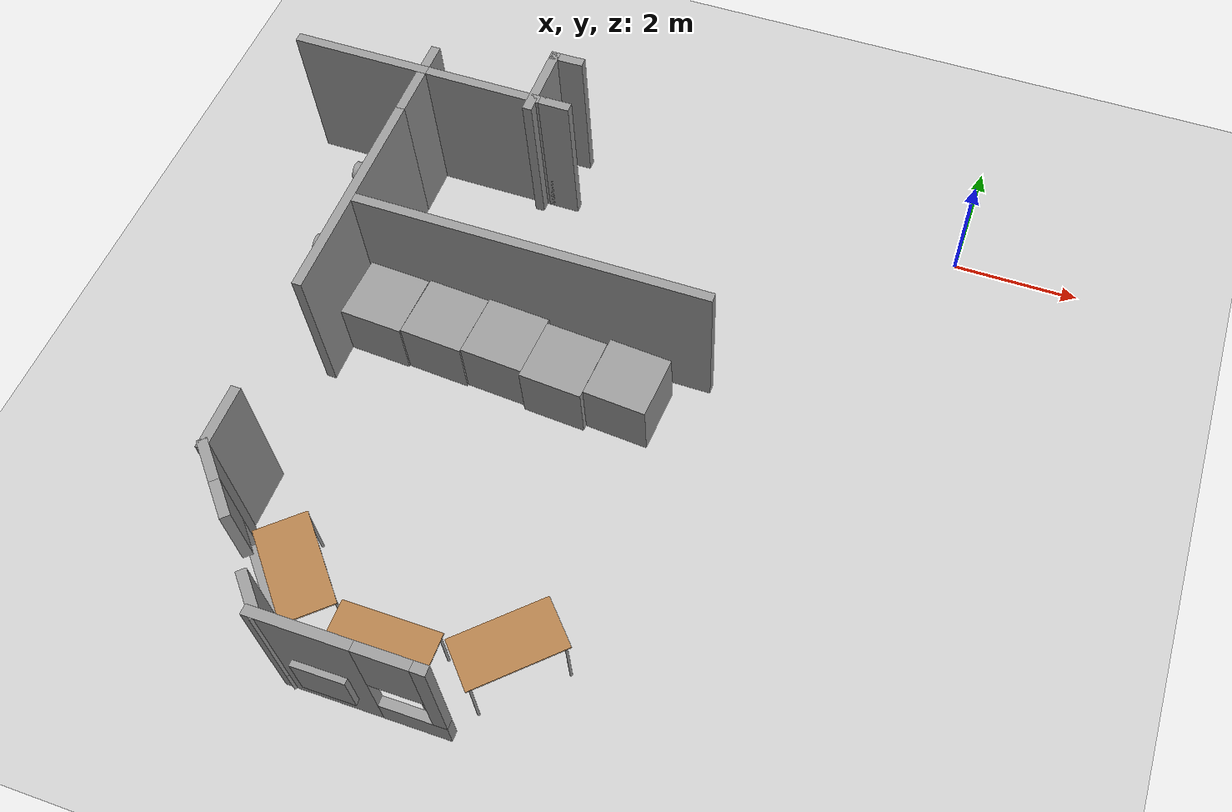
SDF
<sdf version="1.6">
 <world name="default">
  <model name="ground_plane">
   <static>1</static>
   <link name="link">
    <collision name="collision">
     <geometry><plane><normal>0 0 1</normal><size>100 100</size></plane></geometry>
     <surface>
      <contact><collide_bitmask>65535</collide_bitmask></contact>
      <friction><ode><mu>100</mu><mu2>50</mu2></ode></friction>
     </surface>
    </collision>
    <visual name="visual">
     <cast_shadows>0</cast_shadows>
     <geometry><plane><normal>0 0 1</normal><size>100 100</size></plane></geometry>
     <material>
      <script><uri>file://media/materials/scripts/gazebo.material</uri><name>Gazebo/Grey</name></script>
     </material>
    </visual>
   </link>
  </model>
  <model name="spruce1st">
   <pose>-3.08285 0.81707 0 0 -0 0</pose>
   <link name="Wall_114">
    <collision name="Wall_114_Collision">
     <geometry><box><size>0.558425 0.15 2.5</size></box></geometry>
     <pose>0 0 1.25 0 -0 0</pose>
    </collision>
    <visual name="Wall_114_Visual">
     <pose>0 0 1.25 0 -0 0</pose>
     <geometry><box><size>0.558425 0.15 2.5</size></box></geometry>
     <material>
      <script><uri>file://media/materials/scripts/gazebo.material</uri><name>Gazebo/Grey</name></script>
      <ambient>1 1 1 1</ambient>
     </material>
     <meta><layer>0</layer></meta>
    </visual>
    <pose>-3.5929 -0.747612 0 0 -0 0.011322</pose>
   </link>
   <link name="Wall_118">
    <collision name="Wall_118_Collision">
     <geometry><box><size>2.25 0.15 2.5</size></box></geometry>
     <pose>0 0 1.25 0 -0 0</pose>
    </collision>
    <visual name="Wall_118_Visual">
     <pose>0 0 1.25 0 -0 0</pose>
     <geometry><box><size>2.25 0.15 2.5</size></box></geometry>
     <material>
      <script><uri>file://media/materials/scripts/gazebo.material</uri><name>Gazebo/Grey</name></script>
      <ambient>1 1 1 1</ambient>
     </material>
     <meta><layer>0</layer></meta>
    </visual>
    <pose>-6.69747 -1.68429 0 0 -0 3.14159</pose>
   </link>
   <link name="Wall_120">
    <pose>-4.75817 -9.71229 0 0 0 -0.827482</pose>
    <visual name="Wall_120_Visual_0">
     <pose>-1.03991 0 1.25 0 -0 0</pose>
     <geometry><box><size>0.672491 0.15 2.5</size></box></geometry>
     <material>
      <script><uri>file://media/materials/scripts/gazebo.material</uri><name>Gazebo/Grey</name></script>
      <ambient>1 1 1 1</ambient>
     </material>
     <meta><layer>0</layer></meta>
    </visual>
    <collision name="Wall_120_Collision_0">
     <geometry><box><size>0.672491 0.15 2.5</size></box></geometry>
     <pose>-1.03991 0 1.25 0 -0 0</pose>
    </collision>
    <visual name="Wall_120_Visual_1">
     <pose>0.336245 0 0.25 0 -0 0</pose>
     <geometry><box><size>2.07981 0.15 0.5</size></box></geometry>
     <material>
      <script><uri>file://media/materials/scripts/gazebo.material</uri><name>Gazebo/Grey</name></script>
      <ambient>1 1 1 1</ambient>
     </material>
     <meta><layer>0</layer></meta>
    </visual>
    <collision name="Wall_120_Collision_1">
     <geometry><box><size>2.07981 0.15 0.5</size></box></geometry>
     <pose>0.336245 0 0.25 0 -0 0</pose>
    </collision>
    <visual name="Wall_120_Visual_2">
     <pose>1.02545 0 1.5 0 -0 0</pose>
     <geometry><box><size>0.701408 0.15 2</size></box></geometry>
     <material>
      <script><uri>file://media/materials/scripts/gazebo.material</uri><name>Gazebo/Grey</name></script>
      <ambient>1 1 1 1</ambient>
     </material>
     <meta><layer>0</layer></meta>
    </visual>
    <collision name="Wall_120_Collision_2">
     <geometry><box><size>0.701408 0.15 2</size></box></geometry>
     <pose>1.02545 0 1.5 0 -0 0</pose>
    </collision>
    <visual name="Wall_120_Visual_3">
     <pose>-0.414459 0 1.9 0 -0 0</pose>
     <geometry><box><size>0.578405 0.15 1.2</size></box></geometry>
     <material>
      <script><uri>file://media/materials/scripts/gazebo.material</uri><name>Gazebo/Grey</name></script>
      <ambient>1 1 1 1</ambient>
     </material>
     <meta><layer>0</layer></meta>
    </visual>
    <collision name="Wall_120_Collision_3">
     <geometry><box><size>0.578405 0.15 1.2</size></box></geometry>
     <pose>-0.414459 0 1.9 0 -0 0</pose>
    </collision>
   </link>
   <link name="Wall_121">
    <pose>-2.78005 -10.6702 0 0 -0 0</pose>
    <visual name="Wall_121_Visual_0">
     <pose>-0.507131 0 1.25 0 -0 0</pose>
     <geometry><box><size>1.48574 0.15 2.5</size></box></geometry>
     <material>
      <script><uri>file://media/materials/scripts/gazebo.material</uri><name>Gazebo/Grey</name></script>
      <ambient>1 1 1 1</ambient>
     </material>
     <meta><layer>0</layer></meta>
    </visual>
    <collision name="Wall_121_Collision_0">
     <geometry><box><size>1.48574 0.15 2.5</size></box></geometry>
     <pose>-0.507131 0 1.25 0 -0 0</pose>
    </collision>
    <visual name="Wall_121_Visual_1">
     <pose>0.742869 0 0.25 0 -0 0</pose>
     <geometry><box><size>1.01426 0.15 0.5</size></box></geometry>
     <material>
      <script><uri>file://media/materials/scripts/gazebo.material</uri><name>Gazebo/Grey</name></script>
      <ambient>1 1 1 1</ambient>
     </material>
     <meta><layer>0</layer></meta>
    </visual>
    <collision name="Wall_121_Collision_1">
     <geometry><box><size>1.01426 0.15 0.5</size></box></geometry>
     <pose>0.742869 0 0.25 0 -0 0</pose>
    </collision>
    <visual name="Wall_121_Visual_2">
     <pose>1.14287 0 1.5 0 -0 0</pose>
     <geometry><box><size>0.214262 0.15 2</size></box></geometry>
     <material>
      <script><uri>file://media/materials/scripts/gazebo.material</uri><name>Gazebo/Grey</name></script>
      <ambient>1 1 1 1</ambient>
     </material>
     <meta><layer>0</layer></meta>
    </visual>
    <collision name="Wall_121_Collision_2">
     <geometry><box><size>0.214262 0.15 2</size></box></geometry>
     <pose>1.14287 0 1.5 0 -0 0</pose>
    </collision>
    <visual name="Wall_121_Visual_3">
     <pose>0.635738 0 1.9 0 -0 0</pose>
     <geometry><box><size>0.8 0.15 1.2</size></box></geometry>
     <material>
      <script><uri>file://media/materials/scripts/gazebo.material</uri><name>Gazebo/Grey</name></script>
      <ambient>1 1 1 1</ambient>
     </material>
     <meta><layer>0</layer></meta>
    </visual>
    <collision name="Wall_121_Collision_3">
     <geometry><box><size>0.8 0.15 1.2</size></box></geometry>
     <pose>0.635738 0 1.9 0 -0 0</pose>
    </collision>
   </link>
   <link name="Wall_129">
    <collision name="Wall_129_Collision">
     <geometry><box><size>2.13359 0.15 2.5</size></box></geometry>
     <pose>0 0 1.25 0 -0 0</pose>
    </collision>
    <visual name="Wall_129_Visual">
     <pose>0 0 1.25 0 -0 0</pose>
     <geometry><box><size>2.13359 0.15 2.5</size></box></geometry>
     <material>
      <script><uri>file://media/materials/scripts/gazebo.material</uri><name>Gazebo/Grey</name></script>
      <ambient>1 1 1 1</ambient>
     </material>
     <meta><layer>0</layer></meta>
    </visual>
    <pose>-4.65567 -1.68429 0 0 -0 0</pose>
   </link>
   <link name="Wall_130">
    <collision name="Wall_130_Collision">
     <geometry><box><size>0.5 0.15 2.5</size></box></geometry>
     <pose>0 0 1.25 0 -0 0</pose>
    </collision>
    <visual name="Wall_130_Visual">
     <pose>0 0 1.25 0 -0 0</pose>
     <geometry><box><size>0.5 0.15 2.5</size></box></geometry>
     <material>
      <script><uri>file://media/materials/scripts/gazebo.material</uri><name>Gazebo/Grey</name></script>
      <ambient>0 0 0 0</ambient>
     </material>
     <meta><layer>0</layer></meta>
    </visual>
    <pose>-3.43067 -1.68429 0 0 -0 0</pose>
   </link>
   <link name="Wall_131">
    <collision name="Wall_131_Collision">
     <geometry><box><size>1.25 0.15 2.5</size></box></geometry>
     <pose>0 0 1.25 0 -0 0</pose>
    </collision>
    <visual name="Wall_131_Visual">
     <pose>0 0 1.25 0 -0 0</pose>
     <geometry><box><size>1.25 0.15 2.5</size></box></geometry>
     <material>
      <script><uri>file://media/materials/scripts/gazebo.material</uri><name>Gazebo/Grey</name></script>
      <ambient>1 1 1 1</ambient>
     </material>
     <meta><layer>0</layer></meta>
    </visual>
    <pose>-3.7971 -1.29992 0 0 0 -1.5708</pose>
   </link>
   <link name="Wall_34">
    <collision name="Wall_34_Collision">
     <geometry><box><size>1.5 0.15 2.5</size></box></geometry>
     <pose>0 0 1.25 0 -0 0</pose>
    </collision>
    <visual name="Wall_34_Visual">
     <pose>0 0 1.25 0 -0 0</pose>
     <geometry><box><size>1.5 0.15 2.5</size></box></geometry>
     <material>
      <script><uri>file://media/materials/scripts/gazebo.material</uri><name>Gazebo/Grey</name></script>
      <ambient>1 1 1 1</ambient>
     </material>
     <meta><layer>0</layer></meta>
    </visual>
    <pose>-5.64574 -1.939 0 0 0 -1.5708</pose>
   </link>
   <link name="Wall_43">
    <collision name="Wall_43_Collision">
     <geometry><box><size>3.5 0.15 2.5</size></box></geometry>
     <pose>0 0 1.25 0 -0 0</pose>
    </collision>
    <visual name="Wall_43_Visual">
     <pose>0 0 1.25 0 -0 0</pose>
     <geometry><box><size>3.5 0.15 2.5</size></box></geometry>
     <material>
      <script><uri>file://media/materials/scripts/gazebo.material</uri><name>Gazebo/Grey</name></script>
      <ambient>1 1 1 1</ambient>
     </material>
     <meta><layer>0</layer></meta>
    </visual>
    <pose>-5.64574 -4.289 0 0 0 -1.5708</pose>
   </link>
   <link name="Wall_45">
    <collision name="Wall_45_Collision">
     <geometry><box><size>1 0.15 2.5</size></box></geometry>
     <pose>0 0 1.25 0 -0 0</pose>
    </collision>
    <visual name="Wall_45_Visual">
     <pose>0 0 1.25 0 -0 0</pose>
     <geometry><box><size>1 0.15 2.5</size></box></geometry>
     <material>
      <script><uri>file://media/materials/scripts/gazebo.material</uri><name>Gazebo/Grey</name></script>
      <ambient>1 1 1 1</ambient>
     </material>
     <meta><layer>0</layer></meta>
    </visual>
    <pose>-5.6387 -8.32935 0 0 -0 1.5708</pose>
   </link>
   <link name="Wall_47">
    <collision name="Wall_47_Collision">
     <geometry><box><size>5.75 0.15 2.5</size></box></geometry>
     <pose>0 0 1.25 0 -0 0</pose>
    </collision>
    <visual name="Wall_47_Visual">
     <pose>0 0 1.25 0 -0 0</pose>
     <geometry><box><size>5.75 0.15 2.5</size></box></geometry>
     <material>
      <script><uri>file://media/materials/scripts/gazebo.material</uri><name>Gazebo/Grey</name></script>
      <ambient>1 1 1 1</ambient>
     </material>
     <meta><layer>0</layer></meta>
    </visual>
    <pose>-2.8387 -4.3461 0 0 -0 0</pose>
   </link>
   <link name="Window_18">
    <collision name="Window_18_Collision">
     <geometry><box><size>0.8 0.17 0.8</size></box></geometry>
     <pose>0 0 0.4 0 -0 0</pose>
    </collision>
    <visual name="Window_18_Visual">
     <pose>0 0 0.4 0 -0 0</pose>
     <geometry><box><size>0.8 0.17 0.8</size></box></geometry>
     <material>
      <script><uri>file://media/materials/scripts/gazebo.material</uri><name>Gazebo/Grey</name></script>
     </material>
    </visual>
    <pose>-3.21325 -10.7513 0.5 0 -0 0</pose>
   </link>
   <static>1</static>
  </model>
  <model name="table_0">
   <static>1</static>
   <link name="link">
    <collision name="surface">
     <pose>0 0 1 0 -0 0</pose>
     <geometry><box><size>1.5 0.8 0.03</size></box></geometry>
     <surface><friction><ode><mu>0.6</mu><mu2>0.6</mu2></ode></friction></surface>
    </collision>
    <visual name="visual1">
     <pose>0 0 1 0 -0 0</pose>
     <geometry><box><size>1.5 0.8 0.03</size></box></geometry>
     <material>
      <script><uri>file://media/materials/scripts/gazebo.material</uri><name>Gazebo/Wood</name></script>
     </material>
    </visual>
    <collision name="front_left_leg">
     <pose>0.68 0.38 0.5 0 -0 0</pose>
     <geometry><cylinder><radius>0.02</radius><length>1</length></cylinder></geometry>
    </collision>
    <visual name="front_left_leg">
     <pose>0.68 0.38 0.5 0 -0 0</pose>
     <geometry><cylinder><radius>0.02</radius><length>1</length></cylinder></geometry>
     <material>
      <script><uri>file://media/materials/scripts/gazebo.material</uri><name>Gazebo/Grey</name></script>
     </material>
    </visual>
    <collision name="front_right_leg">
     <pose>0.68 -0.38 0.5 0 -0 0</pose>
     <geometry><cylinder><radius>0.02</radius><length>1</length></cylinder></geometry>
    </collision>
    <visual name="front_right_leg">
     <pose>0.68 -0.38 0.5 0 -0 0</pose>
     <geometry><cylinder><radius>0.02</radius><length>1</length></cylinder></geometry>
     <material>
      <script><uri>file://media/materials/scripts/gazebo.material</uri><name>Gazebo/Grey</name></script>
     </material>
    </visual>
    <collision name="back_right_leg">
     <pose>-0.68 -0.38 0.5 0 -0 0</pose>
     <geometry><cylinder><radius>0.02</radius><length>1</length></cylinder></geometry>
    </collision>
    <visual name="back_right_leg">
     <pose>-0.68 -0.38 0.5 0 -0 0</pose>
     <geometry><cylinder><radius>0.02</radius><length>1</length></cylinder></geometry>
     <material>
      <script><uri>file://media/materials/scripts/gazebo.material</uri><name>Gazebo/Grey</name></script>
     </material>
    </visual>
    <collision name="back_left_leg">
     <pose>-0.68 0.38 0.5 0 -0 0</pose>
     <geometry><cylinder><radius>0.02</radius><length>1</length></cylinder></geometry>
    </collision>
    <visual name="back_left_leg">
     <pose>-0.68 0.38 0.5 0 -0 0</pose>
     <geometry><cylinder><radius>0.02</radius><length>1</length></cylinder></geometry>
     <material>
      <script><uri>file://media/materials/scripts/gazebo.material</uri><name>Gazebo/Grey</name></script>
     </material>
    </visual>
   </link>
   <pose>-5.80464 -9.26924 0 0 -0 0</pose>
  </model>
  <model name="table_1">
   <static>1</static>
   <link name="link">
    <collision name="surface">
     <pose>0 0 1 0 -0 0</pose>
     <geometry><box><size>1.5 0.8 0.03</size></box></geometry>
     <surface><friction><ode><mu>0.6</mu><mu2>0.6</mu2></ode></friction></surface>
    </collision>
    <visual name="visual1">
     <pose>0 0 1 0 -0 0</pose>
     <geometry><box><size>1.5 0.8 0.03</size></box></geometry>
     <material>
      <script><uri>file://media/materials/scripts/gazebo.material</uri><name>Gazebo/Wood</name></script>
     </material>
    </visual>
    <collision name="front_left_leg">
     <pose>0.68 0.38 0.5 0 -0 0</pose>
     <geometry><cylinder><radius>0.02</radius><length>1</length></cylinder></geometry>
    </collision>
    <visual name="front_left_leg">
     <pose>0.68 0.38 0.5 0 -0 0</pose>
     <geometry><cylinder><radius>0.02</radius><length>1</length></cylinder></geometry>
     <material>
      <script><uri>file://media/materials/scripts/gazebo.material</uri><name>Gazebo/Grey</name></script>
     </material>
    </visual>
    <collision name="front_right_leg">
     <pose>0.68 -0.38 0.5 0 -0 0</pose>
     <geometry><cylinder><radius>0.02</radius><length>1</length></cylinder></geometry>
    </collision>
    <visual name="front_right_leg">
     <pose>0.68 -0.38 0.5 0 -0 0</pose>
     <geometry><cylinder><radius>0.02</radius><length>1</length></cylinder></geometry>
     <material>
      <script><uri>file://media/materials/scripts/gazebo.material</uri><name>Gazebo/Grey</name></script>
     </material>
    </visual>
    <collision name="back_right_leg">
     <pose>-0.68 -0.38 0.5 0 -0 0</pose>
     <geometry><cylinder><radius>0.02</radius><length>1</length></cylinder></geometry>
    </collision>
    <visual name="back_right_leg">
     <pose>-0.68 -0.38 0.5 0 -0 0</pose>
     <geometry><cylinder><radius>0.02</radius><length>1</length></cylinder></geometry>
     <material>
      <script><uri>file://media/materials/scripts/gazebo.material</uri><name>Gazebo/Grey</name></script>
     </material>
    </visual>
    <collision name="back_left_leg">
     <pose>-0.68 0.38 0.5 0 -0 0</pose>
     <geometry><cylinder><radius>0.02</radius><length>1</length></cylinder></geometry>
    </collision>
    <visual name="back_left_leg">
     <pose>-0.68 0.38 0.5 0 -0 0</pose>
     <geometry><cylinder><radius>0.02</radius><length>1</length></cylinder></geometry>
     <material>
      <script><uri>file://media/materials/scripts/gazebo.material</uri><name>Gazebo/Grey</name></script>
     </material>
    </visual>
   </link>
   <pose>-7.3924 -8.64565 0 0 0 -0.841721</pose>
  </model>
  <model name="table_2">
   <static>1</static>
   <link name="link">
    <collision name="surface">
     <pose>0 0 1 0 -0 0</pose>
     <geometry><box><size>1.5 0.8 0.03</size></box></geometry>
     <surface><friction><ode><mu>0.6</mu><mu2>0.6</mu2></ode></friction></surface>
    </collision>
    <visual name="visual1">
     <pose>0 0 1 0 -0 0</pose>
     <geometry><box><size>1.5 0.8 0.03</size></box></geometry>
     <material>
      <script><uri>file://media/materials/scripts/gazebo.material</uri><name>Gazebo/Wood</name></script>
     </material>
    </visual>
    <collision name="front_left_leg">
     <pose>0.68 0.38 0.5 0 -0 0</pose>
     <geometry><cylinder><radius>0.02</radius><length>1</length></cylinder></geometry>
    </collision>
    <visual name="front_left_leg">
     <pose>0.68 0.38 0.5 0 -0 0</pose>
     <geometry><cylinder><radius>0.02</radius><length>1</length></cylinder></geometry>
     <material>
      <script><uri>file://media/materials/scripts/gazebo.material</uri><name>Gazebo/Grey</name></script>
     </material>
    </visual>
    <collision name="front_right_leg">
     <pose>0.68 -0.38 0.5 0 -0 0</pose>
     <geometry><cylinder><radius>0.02</radius><length>1</length></cylinder></geometry>
    </collision>
    <visual name="front_right_leg">
     <pose>0.68 -0.38 0.5 0 -0 0</pose>
     <geometry><cylinder><radius>0.02</radius><length>1</length></cylinder></geometry>
     <material>
      <script><uri>file://media/materials/scripts/gazebo.material</uri><name>Gazebo/Grey</name></script>
     </material>
    </visual>
    <collision name="back_right_leg">
     <pose>-0.68 -0.38 0.5 0 -0 0</pose>
     <geometry><cylinder><radius>0.02</radius><length>1</length></cylinder></geometry>
    </collision>
    <visual name="back_right_leg">
     <pose>-0.68 -0.38 0.5 0 -0 0</pose>
     <geometry><cylinder><radius>0.02</radius><length>1</length></cylinder></geometry>
     <material>
      <script><uri>file://media/materials/scripts/gazebo.material</uri><name>Gazebo/Grey</name></script>
     </material>
    </visual>
    <collision name="back_left_leg">
     <pose>-0.68 0.38 0.5 0 -0 0</pose>
     <geometry><cylinder><radius>0.02</radius><length>1</length></cylinder></geometry>
    </collision>
    <visual name="back_left_leg">
     <pose>-0.68 0.38 0.5 0 -0 0</pose>
     <geometry><cylinder><radius>0.02</radius><length>1</length></cylinder></geometry>
     <material>
      <script><uri>file://media/materials/scripts/gazebo.material</uri><name>Gazebo/Grey</name></script>
     </material>
    </visual>
   </link>
   <pose>-4.1919 -8.72411 0 0 -0 0.755331</pose>
  </model>
  <model name="bookshelf_clone_2">
   <static>1</static>
   <link name="link">
    <inertial><mass>1</mass></inertial>
    <collision name="back">
     <pose>0 0.005 0.6 0 -0 0</pose>
     <geometry><box><size>0.9 0.01 1.2</size></box></geometry>
    </collision>
    <visual name="visual1">
     <pose>0 0.005 0.6 0 -0 0</pose>
     <geometry><box><size>0.9 0.01 1.2</size></box></geometry>
     <material>
      <script><uri>file://media/materials/scripts/gazebo.material</uri><name>Gazebo/Wood</name></script>
     </material>
    </visual>
    <collision name="left_side">
     <pose>0.45 -0.195 0.6 0 -0 0</pose>
     <geometry><box><size>0.02 0.4 1.2</size></box></geometry>
    </collision>
    <visual name="visual2">
     <pose>0.45 -0.195 0.6 0 -0 0</pose>
     <geometry><box><size>0.02 0.4 1.2</size></box></geometry>
     <material>
      <script><uri>file://media/materials/scripts/gazebo.material</uri><name>Gazebo/Wood</name></script>
     </material>
    </visual>
    <collision name="right_side">
     <pose>-0.45 -0.195 0.6 0 -0 0</pose>
     <geometry><box><size>0.02 0.4 1.2</size></box></geometry>
    </collision>
    <visual name="visual3">
     <pose>-0.45 -0.195 0.6 0 -0 0</pose>
     <geometry><box><size>0.02 0.4 1.2</size></box></geometry>
     <material>
      <script><uri>file://media/materials/scripts/gazebo.material</uri><name>Gazebo/Wood</name></script>
     </material>
    </visual>
    <collision name="bottom">
     <pose>0 -0.195 0.03 0 -0 0</pose>
     <geometry><box><size>0.88 0.4 0.06</size></box></geometry>
    </collision>
    <visual name="visual4">
     <pose>0 -0.195 0.03 0 -0 0</pose>
     <geometry><box><size>0.88 0.4 0.06</size></box></geometry>
     <material>
      <script><uri>file://media/materials/scripts/gazebo.material</uri><name>Gazebo/Wood</name></script>
     </material>
    </visual>
    <collision name="top">
     <pose>0 -0.195 1.19 0 -0 0</pose>
     <geometry><box><size>0.88 0.4 0.02</size></box></geometry>
    </collision>
    <visual name="visual5">
     <pose>0 -0.195 1.19 0 -0 0</pose>
     <geometry><box><size>0.88 0.4 0.02</size></box></geometry>
     <material>
      <script><uri>file://media/materials/scripts/gazebo.material</uri><name>Gazebo/Wood</name></script>
     </material>
    </visual>
    <collision name="low_shelf">
     <pose>0 -0.195 0.43 0 -0 0</pose>
     <geometry><box><size>0.88 0.4 0.02</size></box></geometry>
    </collision>
    <visual name="visual6">
     <pose>0 -0.195 0.43 0 -0 0</pose>
     <geometry><box><size>0.88 0.4 0.02</size></box></geometry>
     <material>
      <script><uri>file://media/materials/scripts/gazebo.material</uri><name>Gazebo/Wood</name></script>
     </material>
    </visual>
    <collision name="high_shelf">
     <pose>0 -0.195 0.8 0 -0 0</pose>
     <geometry><box><size>0.88 0.4 0.02</size></box></geometry>
    </collision>
    <visual name="visual7">
     <pose>0 -0.195 0.8 0 -0 0</pose>
     <geometry><box><size>0.88 0.4 0.02</size></box></geometry>
     <material>
      <script><uri>file://media/materials/scripts/gazebo.material</uri><name>Gazebo/Wood</name></script>
     </material>
    </visual>
   </link>
   <pose>-9.46219 -0.797828 0 0 -0 3.09572</pose>
  </model>
  <model name="couch2.0_5">
   <link name="link_0">
    <pose>0 0.042624 -0.025032 0 -0 0</pose>
    <inertial>
     <mass>0.629351</mass>
     <inertia>
      <ixx>0.0582683</ixx>
      <ixy>0</ixy>
      <ixz>0</ixz>
      <iyy>0.192922</iyy>
      <iyz>0</iyz>
      <izz>0.239546</izz>
     </inertia>
    </inertial>
    <visual name="visual">
     <geometry><box><size>1.88878 1 0.33319</size></box></geometry>
     <material>
      <lighting>1</lighting>
      <script><uri>file://media/materials/scripts/gazebo.material</uri><name>Gazebo/Grey</name></script>
      <shader type="pixel"><normal_map>__default__</normal_map></shader>
      <ambient>0.3 0.3 0.3 1</ambient>
      <diffuse>0.7 0.7 0.7 1</diffuse>
      <specular>0.01 0.01 0.01 1</specular>
      <emissive>0 0 0 1</emissive>
     </material>
    </visual>
    <collision name="collision">
     <geometry><box><size>1.88878 1 0.33319</size></box></geometry>
     <surface>
      <friction>
       <ode><mu>1</mu><mu2>1</mu2><fdir1>0 0 0</fdir1><slip1>0</slip1><slip2>0</slip2></ode>
       <torsional>
        <coefficient>1</coefficient>
        <patch_radius>0</patch_radius>
        <surface_radius>0</surface_radius>
        <use_patch_radius>1</use_patch_radius>
        <ode><slip>0</slip></ode>
       </torsional>
      </friction>
      <bounce><restitution_coefficient>0</restitution_coefficient><threshold>1e+06</threshold></bounce>
      <contact>
       <collide_without_contact>0</collide_without_contact>
       <collide_without_contact_bitmask>1</collide_without_contact_bitmask>
       <collide_bitmask>1</collide_bitmask>
       <ode>
        <soft_cfm>0</soft_cfm>
        <soft_erp>0.2</soft_erp>
        <kp>1e+13</kp>
        <kd>1</kd>
        <max_vel>0.01</max_vel>
        <min_depth>0</min_depth>
       </ode>
       <bullet>
        <split_impulse>1</split_impulse>
        <split_impulse_penetration_threshold>-0.01</split_impulse_penetration_threshold>
        <soft_cfm>0</soft_cfm>
        <soft_erp>0.2</soft_erp>
        <kp>1e+13</kp>
        <kd>1</kd>
       </bullet>
      </contact>
     </surface>
    </collision>
   </link>
   <link name="link_0_clone">
    <pose>0 -0.383981 0.182545 0 -0 0</pose>
    <inertial>
     <mass>0.207466</mass>
     <inertia>
      <ixx>0.0100546</ixx>
      <ixy>0</ixy>
      <ixz>0</ixz>
      <iyy>0.0713599</iyy>
      <iyz>0</iyz>
      <izz>0.0620503</izz>
     </inertia>
    </inertial>
    <visual name="visual">
     <geometry><box><size>1.88878 0.146789 0.748345</size></box></geometry>
     <material>
      <lighting>1</lighting>
      <script><uri>file://media/materials/scripts/gazebo.material</uri><name>Gazebo/Grey</name></script>
      <shader type="pixel"><normal_map>__default__</normal_map></shader>
      <ambient>0.3 0.3 0.3 1</ambient>
      <diffuse>0.7 0.7 0.7 1</diffuse>
      <specular>0.01 0.01 0.01 1</specular>
      <emissive>0 0 0 1</emissive>
     </material>
    </visual>
    <collision name="collision">
     <geometry><box><size>1.88878 0.146789 0.748345</size></box></geometry>
     <surface>
      <friction>
       <ode><mu>1</mu><mu2>1</mu2><fdir1>0 0 0</fdir1><slip1>0</slip1><slip2>0</slip2></ode>
       <torsional>
        <coefficient>1</coefficient>
        <patch_radius>0</patch_radius>
        <surface_radius>0</surface_radius>
        <use_patch_radius>1</use_patch_radius>
        <ode><slip>0</slip></ode>
       </torsional>
      </friction>
      <bounce><restitution_coefficient>0</restitution_coefficient><threshold>1e+06</threshold></bounce>
      <contact>
       <collide_without_contact>0</collide_without_contact>
       <collide_without_contact_bitmask>1</collide_without_contact_bitmask>
       <collide_bitmask>1</collide_bitmask>
       <ode>
        <soft_cfm>0</soft_cfm>
        <soft_erp>0.2</soft_erp>
        <kp>1e+13</kp>
        <kd>1</kd>
        <max_vel>0.01</max_vel>
        <min_depth>0</min_depth>
       </ode>
       <bullet>
        <split_impulse>1</split_impulse>
        <split_impulse_penetration_threshold>-0.01</split_impulse_penetration_threshold>
        <soft_cfm>0</soft_cfm>
        <soft_erp>0.2</soft_erp>
        <kp>1e+13</kp>
        <kd>1</kd>
       </bullet>
      </contact>
     </surface>
    </collision>
   </link>
   <link name="link_1">
    <pose>-0.909335 -0.422322 -0.235214 0 -0 0</pose>
    <inertial>
     <mass>0.000500743</mass>
     <inertia>
      <ixx>5.85623e-07</ixx>
      <ixy>0</ixy>
      <ixz>0</ixz>
      <iyy>5.85623e-07</iyy>
      <iyz>0</iyz>
      <izz>3.07643e-07</izz>
     </inertia>
    </inertial>
    <visual name="visual">
     <geometry><cylinder><radius>0.0350535</radius><length>0.101724</length></cylinder></geometry>
     <material>
      <lighting>1</lighting>
      <script><uri>file://media/materials/scripts/gazebo.material</uri><name>Gazebo/Grey</name></script>
      <shader type="pixel"/>
      <ambient>0.3 0.3 0.3 1</ambient>
      <diffuse>0.7 0.7 0.7 1</diffuse>
      <specular>0.01 0.01 0.01 1</specular>
      <emissive>0 0 0 1</emissive>
     </material>
    </visual>
    <collision name="collision">
     <geometry><cylinder><radius>0.035053</radius><length>0.101724</length></cylinder></geometry>
     <surface>
      <friction>
       <ode><mu>1</mu><mu2>1</mu2><fdir1>0 0 0</fdir1><slip1>0</slip1><slip2>0</slip2></ode>
       <torsional>
        <coefficient>1</coefficient>
        <patch_radius>0</patch_radius>
        <surface_radius>0</surface_radius>
        <use_patch_radius>1</use_patch_radius>
        <ode><slip>0</slip></ode>
       </torsional>
      </friction>
      <bounce><restitution_coefficient>0</restitution_coefficient><threshold>1e+06</threshold></bounce>
      <contact>
       <collide_without_contact>0</collide_without_contact>
       <collide_without_contact_bitmask>1</collide_without_contact_bitmask>
       <collide_bitmask>1</collide_bitmask>
       <ode>
        <soft_cfm>0</soft_cfm>
        <soft_erp>0.2</soft_erp>
        <kp>1e+13</kp>
        <kd>1</kd>
        <max_vel>0.01</max_vel>
        <min_depth>0</min_depth>
       </ode>
       <bullet>
        <split_impulse>1</split_impulse>
        <split_impulse_penetration_threshold>-0.01</split_impulse_penetration_threshold>
        <soft_cfm>0</soft_cfm>
        <soft_erp>0.2</soft_erp>
        <kp>1e+13</kp>
        <kd>1</kd>
       </bullet>
      </contact>
     </surface>
    </collision>
   </link>
   <link name="link_1_clone">
    <pose>-0.909335 0.507571 -0.235214 0 -0 0</pose>
    <inertial>
     <mass>0.000500743</mass>
     <inertia>
      <ixx>5.85623e-07</ixx>
      <ixy>0</ixy>
      <ixz>0</ixz>
      <iyy>5.85623e-07</iyy>
      <iyz>0</iyz>
      <izz>3.07643e-07</izz>
     </inertia>
    </inertial>
    <visual name="visual">
     <geometry><cylinder><radius>0.0350535</radius><length>0.101724</length></cylinder></geometry>
     <material>
      <lighting>1</lighting>
      <script><uri>file://media/materials/scripts/gazebo.material</uri><name>Gazebo/Grey</name></script>
      <shader type="pixel"/>
      <ambient>0.3 0.3 0.3 1</ambient>
      <diffuse>0.7 0.7 0.7 1</diffuse>
      <specular>0.01 0.01 0.01 1</specular>
      <emissive>0 0 0 1</emissive>
     </material>
    </visual>
    <collision name="collision">
     <geometry><cylinder><radius>0.035053</radius><length>0.101724</length></cylinder></geometry>
     <surface>
      <friction>
       <ode><mu>1</mu><mu2>1</mu2><fdir1>0 0 0</fdir1><slip1>0</slip1><slip2>0</slip2></ode>
       <torsional>
        <coefficient>1</coefficient>
        <patch_radius>0</patch_radius>
        <surface_radius>0</surface_radius>
        <use_patch_radius>1</use_patch_radius>
        <ode><slip>0</slip></ode>
       </torsional>
      </friction>
      <bounce><restitution_coefficient>0</restitution_coefficient><threshold>1e+06</threshold></bounce>
      <contact>
       <collide_without_contact>0</collide_without_contact>
       <collide_without_contact_bitmask>1</collide_without_contact_bitmask>
       <collide_bitmask>1</collide_bitmask>
       <ode>
        <soft_cfm>0</soft_cfm>
        <soft_erp>0.2</soft_erp>
        <kp>1e+13</kp>
        <kd>1</kd>
        <max_vel>0.01</max_vel>
        <min_depth>0</min_depth>
       </ode>
       <bullet>
        <split_impulse>1</split_impulse>
        <split_impulse_penetration_threshold>-0.01</split_impulse_penetration_threshold>
        <soft_cfm>0</soft_cfm>
        <soft_erp>0.2</soft_erp>
        <kp>1e+13</kp>
        <kd>1</kd>
       </bullet>
      </contact>
     </surface>
    </collision>
   </link>
   <link name="link_1_clone_0">
    <pose>0.909335 -0.422322 -0.235214 0 -0 0</pose>
    <inertial>
     <mass>0.000500743</mass>
     <inertia>
      <ixx>5.85623e-07</ixx>
      <ixy>0</ixy>
      <ixz>0</ixz>
      <iyy>5.85623e-07</iyy>
      <iyz>0</iyz>
      <izz>3.07643e-07</izz>
     </inertia>
    </inertial>
    <visual name="visual">
     <geometry><cylinder><radius>0.0350535</radius><length>0.101724</length></cylinder></geometry>
     <material>
      <lighting>1</lighting>
      <script><uri>file://media/materials/scripts/gazebo.material</uri><name>Gazebo/Grey</name></script>
      <shader type="pixel"/>
      <ambient>0.3 0.3 0.3 1</ambient>
      <diffuse>0.7 0.7 0.7 1</diffuse>
      <specular>0.01 0.01 0.01 1</specular>
      <emissive>0 0 0 1</emissive>
     </material>
    </visual>
    <collision name="collision">
     <geometry><cylinder><radius>0.035053</radius><length>0.101724</length></cylinder></geometry>
     <surface>
      <friction>
       <ode><mu>1</mu><mu2>1</mu2><fdir1>0 0 0</fdir1><slip1>0</slip1><slip2>0</slip2></ode>
       <torsional>
        <coefficient>1</coefficient>
        <patch_radius>0</patch_radius>
        <surface_radius>0</surface_radius>
        <use_patch_radius>1</use_patch_radius>
        <ode><slip>0</slip></ode>
       </torsional>
      </friction>
      <bounce><restitution_coefficient>0</restitution_coefficient><threshold>1e+06</threshold></bounce>
      <contact>
       <collide_without_contact>0</collide_without_contact>
       <collide_without_contact_bitmask>1</collide_without_contact_bitmask>
       <collide_bitmask>1</collide_bitmask>
       <ode>
        <soft_cfm>0</soft_cfm>
        <soft_erp>0.2</soft_erp>
        <kp>1e+13</kp>
        <kd>1</kd>
        <max_vel>0.01</max_vel>
        <min_depth>0</min_depth>
       </ode>
       <bullet>
        <split_impulse>1</split_impulse>
        <split_impulse_penetration_threshold>-0.01</split_impulse_penetration_threshold>
        <soft_cfm>0</soft_cfm>
        <soft_erp>0.2</soft_erp>
        <kp>1e+13</kp>
        <kd>1</kd>
       </bullet>
      </contact>
     </surface>
    </collision>
   </link>
   <link name="link_1_clone_1">
    <pose>0.909335 0.507571 -0.235214 0 -0 0</pose>
    <inertial>
     <mass>0.000500743</mass>
     <inertia>
      <ixx>5.85623e-07</ixx>
      <ixy>0</ixy>
      <ixz>0</ixz>
      <iyy>5.85623e-07</iyy>
      <iyz>0</iyz>
      <izz>3.07643e-07</izz>
     </inertia>
    </inertial>
    <visual name="visual">
     <geometry><cylinder><radius>0.0350535</radius><length>0.101724</length></cylinder></geometry>
     <material>
      <lighting>1</lighting>
      <script><uri>file://media/materials/scripts/gazebo.material</uri><name>Gazebo/Grey</name></script>
      <shader type="pixel"/>
      <ambient>0.3 0.3 0.3 1</ambient>
      <diffuse>0.7 0.7 0.7 1</diffuse>
      <specular>0.01 0.01 0.01 1</specular>
      <emissive>0 0 0 1</emissive>
     </material>
    </visual>
    <collision name="collision">
     <geometry><cylinder><radius>0.035053</radius><length>0.101724</length></cylinder></geometry>
     <surface>
      <friction>
       <ode><mu>1</mu><mu2>1</mu2><fdir1>0 0 0</fdir1><slip1>0</slip1><slip2>0</slip2></ode>
       <torsional>
        <coefficient>1</coefficient>
        <patch_radius>0</patch_radius>
        <surface_radius>0</surface_radius>
        <use_patch_radius>1</use_patch_radius>
        <ode><slip>0</slip></ode>
       </torsional>
      </friction>
      <bounce><restitution_coefficient>0</restitution_coefficient><threshold>1e+06</threshold></bounce>
      <contact>
       <collide_without_contact>0</collide_without_contact>
       <collide_without_contact_bitmask>1</collide_without_contact_bitmask>
       <collide_bitmask>1</collide_bitmask>
       <ode>
        <soft_cfm>0</soft_cfm>
        <soft_erp>0.2</soft_erp>
        <kp>1e+13</kp>
        <kd>1</kd>
        <max_vel>0.01</max_vel>
        <min_depth>0</min_depth>
       </ode>
       <bullet>
        <split_impulse>1</split_impulse>
        <split_impulse_penetration_threshold>-0.01</split_impulse_penetration_threshold>
        <soft_cfm>0</soft_cfm>
        <soft_erp>0.2</soft_erp>
        <kp>1e+13</kp>
        <kd>1</kd>
       </bullet>
      </contact>
     </surface>
    </collision>
   </link>
   <link name="link_3">
    <pose>-0.787536 0.042624 0.075794 0 -0 0</pose>
    <inertial>
     <mass>0.167781</mass>
     <inertia>
      <ixx>0.0179813</ixx>
      <ixy>0</ixy>
      <ixz>0</ixz>
      <iyy>0.0053755</iyy>
      <iyz>0</iyz>
      <izz>0.0153577</izz>
     </inertia>
    </inertial>
    <visual name="visual">
     <geometry><box><size>0.313705 1 0.534841</size></box></geometry>
     <material>
      <lighting>1</lighting>
      <script><uri>file://media/materials/scripts/gazebo.material</uri><name>Gazebo/Grey</name></script>
      <shader type="pixel"/>
      <ambient>0.3 0.3 0.3 1</ambient>
      <diffuse>0.7 0.7 0.7 1</diffuse>
      <specular>0.01 0.01 0.01 1</specular>
      <emissive>0 0 0 1</emissive>
     </material>
    </visual>
    <collision name="collision">
     <geometry><box><size>0.313705 1 0.534841</size></box></geometry>
     <surface>
      <friction>
       <ode><mu>1</mu><mu2>1</mu2><fdir1>0 0 0</fdir1><slip1>0</slip1><slip2>0</slip2></ode>
       <torsional>
        <coefficient>1</coefficient>
        <patch_radius>0</patch_radius>
        <surface_radius>0</surface_radius>
        <use_patch_radius>1</use_patch_radius>
        <ode><slip>0</slip></ode>
       </torsional>
      </friction>
      <bounce><restitution_coefficient>0</restitution_coefficient><threshold>1e+06</threshold></bounce>
      <contact>
       <collide_without_contact>0</collide_without_contact>
       <collide_without_contact_bitmask>1</collide_without_contact_bitmask>
       <collide_bitmask>1</collide_bitmask>
       <ode>
        <soft_cfm>0</soft_cfm>
        <soft_erp>0.2</soft_erp>
        <kp>1e+13</kp>
        <kd>1</kd>
        <max_vel>0.01</max_vel>
        <min_depth>0</min_depth>
       </ode>
       <bullet>
        <split_impulse>1</split_impulse>
        <split_impulse_penetration_threshold>-0.01</split_impulse_penetration_threshold>
        <soft_cfm>0</soft_cfm>
        <soft_erp>0.2</soft_erp>
        <kp>1e+13</kp>
        <kd>1</kd>
       </bullet>
      </contact>
     </surface>
    </collision>
   </link>
   <link name="link_3_clone">
    <pose>0.787536 0.042624 0.075794 0 -0 0</pose>
    <inertial>
     <mass>0.163893</mass>
     <inertia>
      <ixx>0.0173856</ixx>
      <ixy>0</ixy>
      <ixz>0</ixz>
      <iyy>0.00507196</iyy>
      <iyz>0</iyz>
      <izz>0.0150018</izz>
     </inertia>
    </inertial>
    <visual name="visual">
     <geometry><box><size>0.313705 1 0.522447</size></box></geometry>
     <material>
      <lighting>1</lighting>
      <script><uri>file://media/materials/scripts/gazebo.material</uri><name>Gazebo/Grey</name></script>
      <shader type="pixel"><normal_map>__default__</normal_map></shader>
      <ambient>0.3 0.3 0.3 1</ambient>
      <diffuse>0.7 0.7 0.7 1</diffuse>
      <specular>0.01 0.01 0.01 1</specular>
      <emissive>0 0 0 1</emissive>
     </material>
    </visual>
    <collision name="collision">
     <geometry><box><size>0.313705 1 0.522447</size></box></geometry>
     <surface>
      <friction>
       <ode><mu>1</mu><mu2>1</mu2><fdir1>0 0 0</fdir1><slip1>0</slip1><slip2>0</slip2></ode>
       <torsional>
        <coefficient>1</coefficient>
        <patch_radius>0</patch_radius>
        <surface_radius>0</surface_radius>
        <use_patch_radius>1</use_patch_radius>
        <ode><slip>0</slip></ode>
       </torsional>
      </friction>
      <bounce><restitution_coefficient>0</restitution_coefficient><threshold>1e+06</threshold></bounce>
      <contact>
       <collide_without_contact>0</collide_without_contact>
       <collide_without_contact_bitmask>1</collide_without_contact_bitmask>
       <collide_bitmask>1</collide_bitmask>
       <ode>
        <soft_cfm>0</soft_cfm>
        <soft_erp>0.2</soft_erp>
        <kp>1e+13</kp>
        <kd>1</kd>
        <max_vel>0.01</max_vel>
        <min_depth>0</min_depth>
       </ode>
       <bullet>
        <split_impulse>1</split_impulse>
        <split_impulse_penetration_threshold>-0.01</split_impulse_penetration_threshold>
        <soft_cfm>0</soft_cfm>
        <soft_erp>0.2</soft_erp>
        <kp>1e+13</kp>
        <kd>1</kd>
       </bullet>
      </contact>
     </surface>
    </collision>
   </link>
   <link name="link_4">
    <pose>0.787536 0.042624 0.315876 1.573 -0 0</pose>
    <inertial>
     <mass>0.110343</mass>
     <inertia>
      <ixx>0.00995618</ixx>
      <ixy>0</ixy>
      <ixz>0</ixz>
      <iyy>0.00995618</iyy>
      <iyz>0</iyz>
      <izz>0.00152191</izz>
     </inertia>
     <pose>0 0 0 0 1.51 0</pose>
    </inertial>
    <visual name="visual">
     <geometry><cylinder><radius>0.166088</radius><length>1</length></cylinder></geometry>
     <material>
      <lighting>1</lighting>
      <script><uri>file://media/materials/scripts/gazebo.material</uri><name>Gazebo/Grey</name></script>
      <shader type="pixel"><normal_map>__default__</normal_map></shader>
      <ambient>0.3 0.3 0.3 1</ambient>
      <diffuse>0.7 0.7 0.7 1</diffuse>
      <specular>0.01 0.01 0.01 1</specular>
      <emissive>0 0 0 1</emissive>
     </material>
    </visual>
    <collision name="collision">
     <geometry><cylinder><radius>0.166088</radius><length>1</length></cylinder></geometry>
     <surface>
      <friction>
       <ode><mu>1</mu><mu2>1</mu2><fdir1>0 0 0</fdir1><slip1>0</slip1><slip2>0</slip2></ode>
       <torsional>
        <coefficient>1</coefficient>
        <patch_radius>0</patch_radius>
        <surface_radius>0</surface_radius>
        <use_patch_radius>1</use_patch_radius>
        <ode><slip>0</slip></ode>
       </torsional>
      </friction>
      <bounce><restitution_coefficient>0</restitution_coefficient><threshold>1e+06</threshold></bounce>
      <contact>
       <collide_without_contact>0</collide_without_contact>
       <collide_without_contact_bitmask>1</collide_without_contact_bitmask>
       <collide_bitmask>1</collide_bitmask>
       <ode>
        <soft_cfm>0</soft_cfm>
        <soft_erp>0.2</soft_erp>
        <kp>1e+13</kp>
        <kd>1</kd>
        <max_vel>0.01</max_vel>
        <min_depth>0</min_depth>
       </ode>
       <bullet>
        <split_impulse>1</split_impulse>
        <split_impulse_penetration_threshold>-0.01</split_impulse_penetration_threshold>
        <soft_cfm>0</soft_cfm>
        <soft_erp>0.2</soft_erp>
        <kp>1e+13</kp>
        <kd>1</kd>
       </bullet>
      </contact>
     </surface>
    </collision>
   </link>
   <link name="link_4_clone">
    <pose>-0.787536 0.042624 0.315877 1.573 -0 0</pose>
    <inertial>
     <mass>0.110343</mass>
     <inertia>
      <ixx>0.00995618</ixx>
      <ixy>0</ixy>
      <ixz>0</ixz>
      <iyy>0.00995618</iyy>
      <iyz>0</iyz>
      <izz>0.00152191</izz>
     </inertia>
     <pose>0 0 0 0 1.51 0</pose>
    </inertial>
    <visual name="visual">
     <geometry><cylinder><radius>0.166088</radius><length>1</length></cylinder></geometry>
     <material>
      <lighting>1</lighting>
      <script><uri>file://media/materials/scripts/gazebo.material</uri><name>Gazebo/Grey</name></script>
      <shader type="pixel"><normal_map>__default__</normal_map></shader>
      <ambient>0.3 0.3 0.3 1</ambient>
      <diffuse>0.7 0.7 0.7 1</diffuse>
      <specular>0.01 0.01 0.01 1</specular>
      <emissive>0 0 0 1</emissive>
     </material>
    </visual>
    <collision name="collision">
     <geometry><cylinder><radius>0.166088</radius><length>1</length></cylinder></geometry>
     <surface>
      <friction>
       <ode><mu>1</mu><mu2>1</mu2><fdir1>0 0 0</fdir1><slip1>0</slip1><slip2>0</slip2></ode>
       <torsional>
        <coefficient>1</coefficient>
        <patch_radius>0</patch_radius>
        <surface_radius>0</surface_radius>
        <use_patch_radius>1</use_patch_radius>
        <ode><slip>0</slip></ode>
       </torsional>
      </friction>
      <bounce><restitution_coefficient>0</restitution_coefficient><threshold>1e+06</threshold></bounce>
      <contact>
       <collide_without_contact>0</collide_without_contact>
       <collide_without_contact_bitmask>1</collide_without_contact_bitmask>
       <collide_bitmask>1</collide_bitmask>
       <ode>
        <soft_cfm>0</soft_cfm>
        <soft_erp>0.2</soft_erp>
        <kp>1e+13</kp>
        <kd>1</kd>
        <max_vel>0.01</max_vel>
        <min_depth>0</min_depth>
       </ode>
       <bullet>
        <split_impulse>1</split_impulse>
        <split_impulse_penetration_threshold>-0.01</split_impulse_penetration_threshold>
        <soft_cfm>0</soft_cfm>
        <soft_erp>0.2</soft_erp>
        <kp>1e+13</kp>
        <kd>1</kd>
       </bullet>
      </contact>
     </surface>
    </collision>
   </link>
   <joint name="link_0_JOINT_0" type="fixed">
    <parent>link_0</parent>
    <child>link_1</child>
    <physics>
     <ode><limit><cfm>0</cfm><erp>0.2</erp></limit><suspension><cfm>0</cfm><erp>0.2</erp></suspension></ode>
    </physics>
   </joint>
   <joint name="link_0_JOINT_1" type="fixed">
    <parent>link_0</parent>
    <child>link_1_clone</child>
    <physics>
     <ode><limit><cfm>0</cfm><erp>0.2</erp></limit><suspension><cfm>0</cfm><erp>0.2</erp></suspension></ode>
    </physics>
   </joint>
   <joint name="link_0_JOINT_2" type="fixed">
    <parent>link_0</parent>
    <child>link_1_clone_0</child>
    <physics>
     <ode><limit><cfm>0</cfm><erp>0.2</erp></limit><suspension><cfm>0</cfm><erp>0.2</erp></suspension></ode>
    </physics>
   </joint>
   <joint name="link_0_JOINT_3" type="fixed">
    <parent>link_0</parent>
    <child>link_1_clone_1</child>
    <physics>
     <ode><limit><cfm>0</cfm><erp>0.2</erp></limit><suspension><cfm>0</cfm><erp>0.2</erp></suspension></ode>
    </physics>
   </joint>
   <joint name="link_0_JOINT_4" type="fixed">
    <parent>link_0</parent>
    <child>link_3</child>
    <physics>
     <ode><limit><cfm>0</cfm><erp>0.2</erp></limit><suspension><cfm>0</cfm><erp>0.2</erp></suspension></ode>
    </physics>
   </joint>
   <joint name="link_0_JOINT_5" type="fixed">
    <parent>link_0</parent>
    <child>link_3_clone</child>
    <physics>
     <ode><limit><cfm>0</cfm><erp>0.2</erp></limit><suspension><cfm>0</cfm><erp>0.2</erp></suspension></ode>
    </physics>
   </joint>
   <joint name="link_0_JOINT_9" type="fixed">
    <parent>link_0</parent>
    <child>link_0_clone</child>
    <physics>
     <ode><limit><cfm>0</cfm><erp>0.2</erp></limit><suspension><cfm>0</cfm><erp>0.2</erp></suspension></ode>
    </physics>
   </joint>
   <joint name="link_4_JOINT_7" type="fixed">
    <parent>link_4</parent>
    <child>link_3_clone</child>
    <physics>
     <ode><limit><cfm>0</cfm><erp>0.2</erp></limit><suspension><cfm>0</cfm><erp>0.2</erp></suspension></ode>
    </physics>
   </joint>
   <joint name="link_4_clone_JOINT_8" type="fixed">
    <parent>link_3</parent>
    <child>link_4_clone</child>
    <physics>
     <ode><limit><cfm>0</cfm><erp>0.2</erp></limit><suspension><cfm>0</cfm><erp>0.2</erp></suspension></ode>
    </physics>
   </joint>
   <static>0</static>
   <pose>-9.32285 -2.46775 0.191632 -0 5e-06 1.60413</pose>
  </model>
  <model name="unit_box">
   <pose>-8.12908 -4.13956 0.499995 0 -1e-05 -0.049981</pose>
   <link name="link">
    <inertial>
     <mass>1</mass>
     <inertia>
      <ixx>0.166667</ixx>
      <ixy>0</ixy>
      <ixz>0</ixz>
      <iyy>0.166667</iyy>
      <iyz>0</iyz>
      <izz>0.166667</izz>
     </inertia>
    </inertial>
    <collision name="collision"><geometry><box><size>1 1 1</size></box></geometry></collision>
    <visual name="visual">
     <geometry><box><size>1 1 1</size></box></geometry>
     <material>
      <script><name>Gazebo/Grey</name><uri>file://media/materials/scripts/gazebo.material</uri></script>
     </material>
    </visual>
   </link>
  </model>
  <model name="unit_box_0">
   <pose>-7.12374 -4.16791 0.5 0 0 -0.060497</pose>
   <link name="link">
    <inertial>
     <mass>1</mass>
     <inertia>
      <ixx>0.166667</ixx>
      <ixy>0</ixy>
      <ixz>0</ixz>
      <iyy>0.166667</iyy>
      <iyz>0</iyz>
      <izz>0.166667</izz>
     </inertia>
    </inertial>
    <collision name="collision"><geometry><box><size>1 1 1</size></box></geometry></collision>
    <visual name="visual">
     <geometry><box><size>1 1 1</size></box></geometry>
     <material>
      <script><name>Gazebo/Grey</name><uri>file://media/materials/scripts/gazebo.material</uri></script>
     </material>
    </visual>
   </link>
  </model>
  <model name="unit_box_1">
   <pose>-6.1229 -4.19864 0.5 0 0 -0.062228</pose>
   <link name="link">
    <inertial>
     <mass>1</mass>
     <inertia>
      <ixx>0.166667</ixx>
      <ixy>0</ixy>
      <ixz>0</ixz>
      <iyy>0.166667</iyy>
      <iyz>0</iyz>
      <izz>0.166667</izz>
     </inertia>
    </inertial>
    <collision name="collision"><geometry><box><size>1 1 1</size></box></geometry></collision>
    <visual name="visual">
     <geometry><box><size>1 1 1</size></box></geometry>
     <material>
      <script><name>Gazebo/Grey</name><uri>file://media/materials/scripts/gazebo.material</uri></script>
     </material>
    </visual>
   </link>
  </model>
  <model name="unit_box_2">
   <pose>-5.12871 -4.32442 0.5 0 0 -0.062416</pose>
   <link name="link">
    <inertial>
     <mass>1</mass>
     <inertia>
      <ixx>0.166667</ixx>
      <ixy>0</ixy>
      <ixz>0</ixz>
      <iyy>0.166667</iyy>
      <iyz>0</iyz>
      <izz>0.166667</izz>
     </inertia>
    </inertial>
    <collision name="collision"><geometry><box><size>1 1 1</size></box></geometry></collision>
    <visual name="visual">
     <geometry><box><size>1 1 1</size></box></geometry>
     <material>
      <script><name>Gazebo/Grey</name><uri>file://media/materials/scripts/gazebo.material</uri></script>
     </material>
    </visual>
   </link>
  </model>
  <model name="unit_box_3">
   <pose>-4.12181 -4.29658 0.499995 -1e-05 -0 -0.068803</pose>
   <link name="link">
    <inertial>
     <mass>1</mass>
     <inertia>
      <ixx>0.166667</ixx>
      <ixy>0</ixy>
      <ixz>0</ixz>
      <iyy>0.166667</iyy>
      <iyz>0</iyz>
      <izz>0.166667</izz>
     </inertia>
    </inertial>
    <collision name="collision"><geometry><box><size>1 1 1</size></box></geometry></collision>
    <visual name="visual">
     <geometry><box><size>1 1 1</size></box></geometry>
     <material>
      <script><name>Gazebo/Grey</name><uri>file://media/materials/scripts/gazebo.material</uri></script>
     </material>
    </visual>
   </link>
  </model>
 </world>
</sdf>
